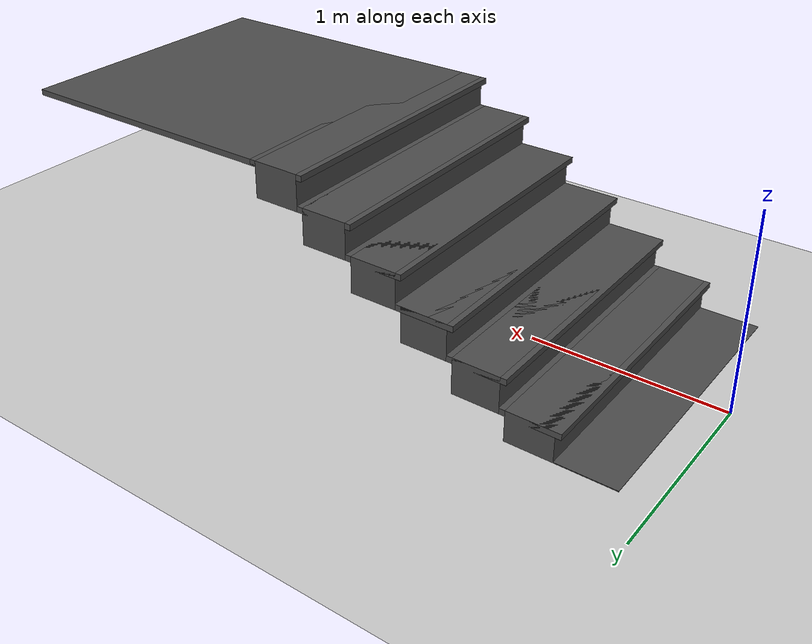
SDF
<?xml version="1.0" ?>
<sdf version="1.4">
  <world name="default">
    <include>
      <uri>model://ground_plane</uri>
    </include>
    <include>
      <uri>model://sun</uri>
    </include>

<model name="box0">
<static>true</static>
<link name='box'>
<pose>0.31 0 -0.015 0 0 0</pose>
<collision name='collision'>
<geometry>
<box>
<size>0.3 1.5 0.03</size>
</box>
</geometry>
</collision>
<visual name='visual'>
<geometry>
<box>
<size>0.3 1.5 0.03</size>
</box>
</geometry>
<material>
<ambient>0.3 0.3 0.3 1</ambient>
<diffuse>0.3 0.3 0.3 1</diffuse>
<specular>0.1 0.1 0.1 1</specular>
<emissive>0 0 0 0</emissive>
</material>
</visual>
</link>
</model>

<model name="box1">
<static>true</static>
<link name='box'>
<pose>0.58 0 0.14 0 0 0</pose>
<collision name='collision'>
<geometry>
<box>
<size>0.3 1.5 0.03</size>
</box>
</geometry>
</collision>
<visual name='visual'>
<geometry>
<box>
<size>0.3 1.5 0.03</size>
</box>
</geometry>
<material>
<ambient>0.3 0.3 0.3 1</ambient>
<diffuse>0.3 0.3 0.3 1</diffuse>
<specular>0.1 0.1 0.1 1</specular>
<emissive>0 0 0 0</emissive>
</material>
</visual>
</link>
</model>

<model name="box11">
<static>true</static>
<link name='box'>
<pose>0.58 0 0.0625 0 0 0</pose>
<collision name='collision'>
<geometry>
<box>
<size>0.24 1.5 0.185</size>
</box>
</geometry>
</collision>
<visual name='visual'>
<geometry>
<box>
<size>0.24 1.5 0.185</size>
</box>
</geometry>
<material>
<ambient>0.3 0.3 0.3 1</ambient>
<diffuse>0.3 0.3 0.3 1</diffuse>
<specular>0.1 0.1 0.1 1</specular>
<emissive>0 0 0 0</emissive>
</material>
</visual>
</link>
</model>

<model name="box2">
<static>true</static>
<link name='box'>
<pose>0.85 0 0.295 0 0 0</pose>
<collision name='collision'>
<geometry>
<box>
<size>0.3 1.5 0.03</size>
</box>
</geometry>
</collision>
<visual name='visual'>
<geometry>
<box>
<size>0.3 1.5 0.03</size>
</box>
</geometry>
<material>
<ambient>0.3 0.3 0.3 1</ambient>
<diffuse>0.3 0.3 0.3 1</diffuse>
<specular>0.1 0.1 0.1 1</specular>
<emissive>0 0 0 0</emissive>
</material>
</visual>
</link>
</model>

<model name="box12">
<static>true</static>
<link name='box'>
<pose>0.85 0 0.2175 0 0 0</pose>
<collision name='collision'>
<geometry>
<box>
<size>0.24 1.5 0.185</size>
</box>
</geometry>
</collision>
<visual name='visual'>
<geometry>
<box>
<size>0.24 1.5 0.185</size>
</box>
</geometry>
<material>
<ambient>0.3 0.3 0.3 1</ambient>
<diffuse>0.3 0.3 0.3 1</diffuse>
<specular>0.1 0.1 0.1 1</specular>
<emissive>0 0 0 0</emissive>
</material>
</visual>
</link>
</model>

<model name="box3">
<static>true</static>
<link name='box'>
<pose>1.12 0 0.45 0 0 0</pose>
<collision name='collision'>
<geometry>
<box>
<size>0.3 1.5 0.03</size>
</box>
</geometry>
</collision>
<visual name='visual'>
<geometry>
<box>
<size>0.3 1.5 0.03</size>
</box>
</geometry>
<material>
<ambient>0.3 0.3 0.3 1</ambient>
<diffuse>0.3 0.3 0.3 1</diffuse>
<specular>0.1 0.1 0.1 1</specular>
<emissive>0 0 0 0</emissive>
</material>
</visual>
</link>
</model>

<model name="box13">
<static>true</static>
<link name='box'>
<pose>1.12 0 0.3725 0 0 0</pose>
<collision name='collision'>
<geometry>
<box>
<size>0.24 1.5 0.185</size>
</box>
</geometry>
</collision>
<visual name='visual'>
<geometry>
<box>
<size>0.24 1.5 0.185</size>
</box>
</geometry>
<material>
<ambient>0.3 0.3 0.3 1</ambient>
<diffuse>0.3 0.3 0.3 1</diffuse>
<specular>0.1 0.1 0.1 1</specular>
<emissive>0 0 0 0</emissive>
</material>
</visual>
</link>
</model>

<model name="box4">
<static>true</static>
<link name='box'>
<pose>1.39 0 0.605 0 0 0</pose>
<collision name='collision'>
<geometry>
<box>
<size>0.3 1.5 0.03</size>
</box>
</geometry>
</collision>
<visual name='visual'>
<geometry>
<box>
<size>0.3 1.5 0.03</size>
</box>
</geometry>
<material>
<ambient>0.3 0.3 0.3 1</ambient>
<diffuse>0.3 0.3 0.3 1</diffuse>
<specular>0.1 0.1 0.1 1</specular>
<emissive>0 0 0 0</emissive>
</material>
</visual>
</link>
</model>

<model name="box14">
<static>true</static>
<link name='box'>
<pose>1.39 0 0.5275 0 0 0</pose>
<collision name='collision'>
<geometry>
<box>
<size>0.24 1.5 0.185</size>
</box>
</geometry>
</collision>
<visual name='visual'>
<geometry>
<box>
<size>0.24 1.5 0.185</size>
</box>
</geometry>
<material>
<ambient>0.3 0.3 0.3 1</ambient>
<diffuse>0.3 0.3 0.3 1</diffuse>
<specular>0.1 0.1 0.1 1</specular>
<emissive>0 0 0 0</emissive>
</material>
</visual>
</link>
</model>

<model name="box5">
<static>true</static>
<link name='box'>
<pose>1.66 0 0.76 0 0 0</pose>
<collision name='collision'>
<geometry>
<box>
<size>0.3 1.5 0.03</size>
</box>
</geometry>
</collision>
<visual name='visual'>
<geometry>
<box>
<size>0.3 1.5 0.03</size>
</box>
</geometry>
<material>
<ambient>0.3 0.3 0.3 1</ambient>
<diffuse>0.3 0.3 0.3 1</diffuse>
<specular>0.1 0.1 0.1 1</specular>
<emissive>0 0 0 0</emissive>
</material>
</visual>
</link>
</model>

<model name="box15">
<static>true</static>
<link name='box'>
<pose>1.66 0 0.6825 0 0 0</pose>
<collision name='collision'>
<geometry>
<box>
<size>0.24 1.5 0.185</size>
</box>
</geometry>
</collision>
<visual name='visual'>
<geometry>
<box>
<size>0.24 1.5 0.185</size>
</box>
</geometry>
<material>
<ambient>0.3 0.3 0.3 1</ambient>
<diffuse>0.3 0.3 0.3 1</diffuse>
<specular>0.1 0.1 0.1 1</specular>
<emissive>0 0 0 0</emissive>
</material>
</visual>
</link>
</model>

<model name="box6">
<static>true</static>
<link name='box'>
<pose>1.93 0 0.915 0 0 0</pose>
<collision name='collision'>
<geometry>
<box>
<size>0.3 1.5 0.03</size>
</box>
</geometry>
</collision>
<visual name='visual'>
<geometry>
<box>
<size>0.3 1.5 0.03</size>
</box>
</geometry>
<material>
<ambient>0.3 0.3 0.3 1</ambient>
<diffuse>0.3 0.3 0.3 1</diffuse>
<specular>0.1 0.1 0.1 1</specular>
<emissive>0 0 0 0</emissive>
</material>
</visual>
</link>
</model>

<model name="box16">
<static>true</static>
<link name='box'>
<pose>1.93 0 0.8375 0 0 0</pose>
<collision name='collision'>
<geometry>
<box>
<size>0.24 1.5 0.185</size>
</box>
</geometry>
</collision>
<visual name='visual'>
<geometry>
<box>
<size>0.24 1.5 0.185</size>
</box>
</geometry>
<material>
<ambient>0.3 0.3 0.3 1</ambient>
<diffuse>0.3 0.3 0.3 1</diffuse>
<specular>0.1 0.1 0.1 1</specular>
<emissive>0 0 0 0</emissive>
</material>
</visual>
</link>
</model>

<model name="box6">
<static>true</static>
<link name='box'>
<pose>2.73 0 0.915 0 0 0</pose>
<collision name='collision'>
<geometry>
<box>
<size>1.6 1.5 0.03</size>
</box>
</geometry>
</collision>
<visual name='visual'>
<geometry>
<box>
<size>1.6 1.5 0.03</size>
</box>
</geometry>
<material>
<ambient>0.3 0.3 0.3 1</ambient>
<diffuse>0.3 0.3 0.3 1</diffuse>
<specular>0.1 0.1 0.1 1</specular>
<emissive>0 0 0 0</emissive>
</material>
</visual>
</link>
</model>

  </world>
</sdf>
